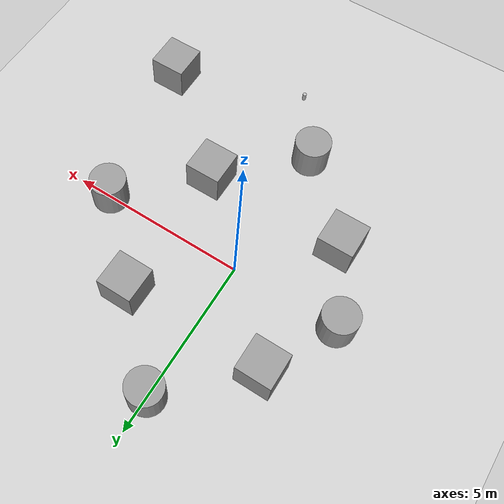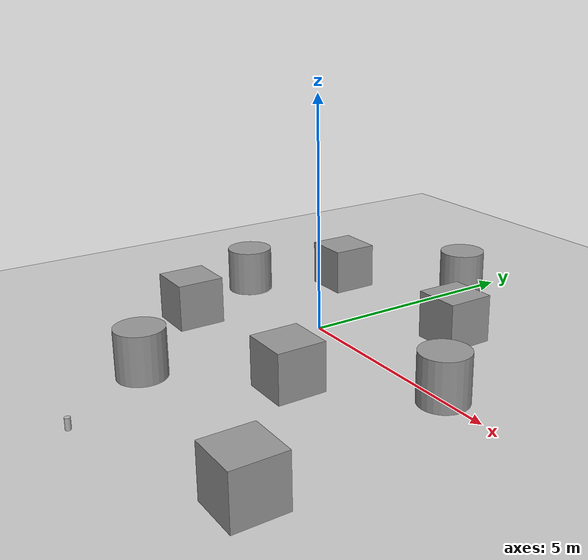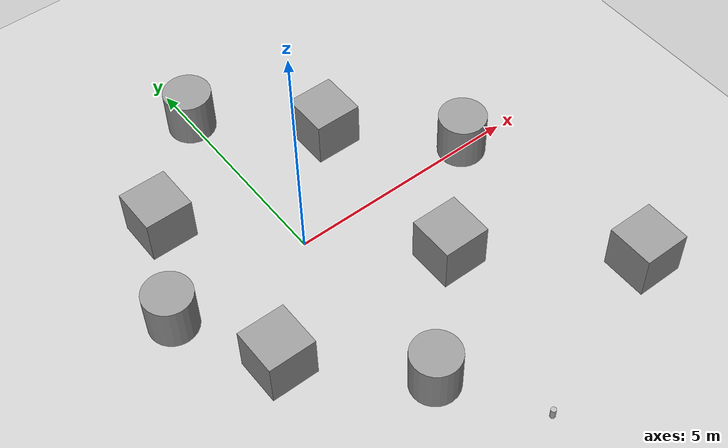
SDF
<sdf version="1.6">
 <world name="default">
  <light name="sun" type="directional">
   <pose>0 0 10 0 -0 0</pose>
   <diffuse>0.8 0.8 0.8 1</diffuse>
   <specular>0.2 0.2 0.2 1</specular>
   <attenuation>
    <range>1000</range>
    <constant>0.9</constant>
    <linear>0.01</linear>
    <quadratic>0.001</quadratic>
   </attenuation>
   <direction>0.5 0.1 -0.9</direction>
  </light>
  <model name="ground_plane">
   <static>1</static>
   <link name="link">
    <collision name="collision">
     <geometry><plane><normal>0 0 1</normal><size>100 100</size></plane></geometry>
     <surface><friction><ode><mu>100</mu><mu2>50</mu2></ode></friction></surface>
    </collision>
    <visual name="visual">
     <cast_shadows>0</cast_shadows>
     <geometry><plane><normal>0 0 1</normal><size>100 100</size></plane></geometry>
     <material>
      <script><uri>file://media/materials/scripts/gazebo.material</uri><name>Gazebo/Grey</name></script>
     </material>
    </visual>
    <velocity_decay><linear>0</linear><angular>0</angular></velocity_decay>
   </link>
  </model>
  <physics name="default_physics" default="0" type="ode">
   <max_step_size>0.01</max_step_size>
   <real_time_factor>1</real_time_factor>
   <real_time_update_rate>100</real_time_update_rate>
  </physics>
  <scene><ambient>0.4 0.4 0.4 1</ambient><background>0.7 0.7 0.7 1</background><shadows>1</shadows></scene>
  <model name="unit_box_1">
   <pose>2 -2 0.5 0 -0 0</pose>
   <link name="link">
    <inertial>
     <mass>1</mass>
     <inertia><ixx>1</ixx><ixy>0</ixy><ixz>0</ixz><iyy>1</iyy><iyz>0</iyz><izz>1</izz></inertia>
    </inertial>
    <collision name="collision"><geometry><box><size>1 1 1</size></box></geometry></collision>
    <visual name="visual">
     <geometry><box><size>1 1 1</size></box></geometry>
     <material>
      <script><uri>file://media/materials/scripts/gazebo.material</uri><name>Gazebo/Grey</name></script>
     </material>
    </visual>
    <velocity_decay><linear>0</linear><angular>0</angular></velocity_decay>
   </link>
   <static>0</static>
  </model>
  <model name="unit_box_2">
   <pose>-2 -2 0.5 0 -0 0</pose>
   <link name="link">
    <inertial>
     <mass>1</mass>
     <inertia><ixx>1</ixx><ixy>0</ixy><ixz>0</ixz><iyy>1</iyy><iyz>0</iyz><izz>1</izz></inertia>
    </inertial>
    <collision name="collision"><geometry><box><size>1 1 1</size></box></geometry></collision>
    <visual name="visual">
     <geometry><box><size>1 1 1</size></box></geometry>
     <material>
      <script><uri>file://media/materials/scripts/gazebo.material</uri><name>Gazebo/Grey</name></script>
     </material>
    </visual>
    <velocity_decay><linear>0</linear><angular>0</angular></velocity_decay>
   </link>
   <static>0</static>
  </model>
  <model name="unit_box_3">
   <pose>-2 2 0.5 0 -0 0</pose>
   <link name="link">
    <inertial>
     <mass>1</mass>
     <inertia><ixx>1</ixx><ixy>0</ixy><ixz>0</ixz><iyy>1</iyy><iyz>0</iyz><izz>1</izz></inertia>
    </inertial>
    <collision name="collision"><geometry><box><size>1 1 1</size></box></geometry></collision>
    <visual name="visual">
     <geometry><box><size>1 1 1</size></box></geometry>
     <material>
      <script><uri>file://media/materials/scripts/gazebo.material</uri><name>Gazebo/Grey</name></script>
     </material>
    </visual>
    <velocity_decay><linear>0</linear><angular>0</angular></velocity_decay>
   </link>
   <static>0</static>
  </model>
  <model name="unit_box_4">
   <pose>2 2 0.5 0 -0 0</pose>
   <link name="link">
    <inertial>
     <mass>1</mass>
     <inertia><ixx>1</ixx><ixy>0</ixy><ixz>0</ixz><iyy>1</iyy><iyz>0</iyz><izz>1</izz></inertia>
    </inertial>
    <collision name="collision"><geometry><box><size>1 1 1</size></box></geometry></collision>
    <visual name="visual">
     <geometry><box><size>1 1 1</size></box></geometry>
     <material>
      <script><uri>file://media/materials/scripts/gazebo.material</uri><name>Gazebo/Grey</name></script>
     </material>
    </visual>
    <velocity_decay><linear>0</linear><angular>0</angular></velocity_decay>
   </link>
   <static>0</static>
  </model>
  <model name="unit_cylinder_1">
   <pose>4 0 0.49912 0 -0 0</pose>
   <link name="link">
    <inertial>
     <mass>1</mass>
     <inertia><ixx>1</ixx><ixy>0</ixy><ixz>0</ixz><iyy>1</iyy><iyz>0</iyz><izz>1</izz></inertia>
    </inertial>
    <collision name="collision">
     <geometry><cylinder><radius>0.5</radius><length>1</length></cylinder></geometry>
    </collision>
    <visual name="visual">
     <geometry><cylinder><radius>0.5</radius><length>1</length></cylinder></geometry>
     <material>
      <script><uri>file://media/materials/scripts/gazebo.material</uri><name>Gazebo/Grey</name></script>
     </material>
    </visual>
    <velocity_decay><linear>0</linear><angular>0</angular></velocity_decay>
   </link>
   <static>0</static>
  </model>
  <model name="unit_cylinder_2">
   <pose>0 4 0.49912 0 -0 0</pose>
   <link name="link">
    <inertial>
     <mass>1</mass>
     <inertia><ixx>1</ixx><ixy>0</ixy><ixz>0</ixz><iyy>1</iyy><iyz>0</iyz><izz>1</izz></inertia>
    </inertial>
    <collision name="collision">
     <geometry><cylinder><radius>0.5</radius><length>1</length></cylinder></geometry>
    </collision>
    <visual name="visual">
     <geometry><cylinder><radius>0.5</radius><length>1</length></cylinder></geometry>
     <material>
      <script><uri>file://media/materials/scripts/gazebo.material</uri><name>Gazebo/Grey</name></script>
     </material>
    </visual>
    <velocity_decay><linear>0</linear><angular>0</angular></velocity_decay>
   </link>
   <static>0</static>
  </model>
  <model name="unit_cylinder_3">
   <pose>-3 0 0.49912 0 -0 0</pose>
   <link name="link">
    <inertial>
     <mass>1</mass>
     <inertia><ixx>1</ixx><ixy>0</ixy><ixz>0</ixz><iyy>1</iyy><iyz>0</iyz><izz>1</izz></inertia>
    </inertial>
    <collision name="collision">
     <geometry><cylinder><radius>0.5</radius><length>1</length></cylinder></geometry>
    </collision>
    <visual name="visual">
     <geometry><cylinder><radius>0.5</radius><length>1</length></cylinder></geometry>
     <material>
      <script><uri>file://media/materials/scripts/gazebo.material</uri><name>Gazebo/Grey</name></script>
     </material>
    </visual>
    <velocity_decay><linear>0</linear><angular>0</angular></velocity_decay>
   </link>
   <static>0</static>
  </model>
  <model name="unit_cylinder_4">
   <pose>0 -4 0.49912 0 -0 0</pose>
   <link name="link">
    <inertial>
     <mass>1</mass>
     <inertia><ixx>1</ixx><ixy>0</ixy><ixz>0</ixz><iyy>1</iyy><iyz>0</iyz><izz>1</izz></inertia>
    </inertial>
    <collision name="collision">
     <geometry><cylinder><radius>0.5</radius><length>1</length></cylinder></geometry>
    </collision>
    <visual name="visual">
     <geometry><cylinder><radius>0.5</radius><length>1</length></cylinder></geometry>
     <material>
      <script><uri>file://media/materials/scripts/gazebo.material</uri><name>Gazebo/Grey</name></script>
     </material>
    </visual>
    <velocity_decay><linear>0</linear><angular>0</angular></velocity_decay>
   </link>
   <static>0</static>
  </model>
  <gravity>0 0 -9.8</gravity>
  <magnetic_field>6e-06 2.3e-05 -4.2e-05</magnetic_field>
  <atmosphere type="adiabatic"/>
  <spherical_coordinates>
   <surface_model>EARTH_WGS84</surface_model>
   <latitude_deg>0</latitude_deg>
   <longitude_deg>0</longitude_deg>
   <elevation>0</elevation>
   <heading_deg>0</heading_deg>
  </spherical_coordinates>
  <model name="unit_box_0">
   <pose>4.79321 -4.43849 0.49907 -0.0001 0 0</pose>
   <link name="link">
    <inertial>
     <mass>1</mass>
     <inertia>
      <ixx>0.166667</ixx>
      <ixy>0</ixy>
      <ixz>0</ixz>
      <iyy>0.166667</iyy>
      <iyz>0</iyz>
      <izz>0.166667</izz>
     </inertia>
    </inertial>
    <collision name="collision"><geometry><box><size>1 1 1</size></box></geometry></collision>
    <visual name="visual">
     <geometry><box><size>1 1 1</size></box></geometry>
     <material>
      <script><name>Gazebo/Grey</name><uri>file://media/materials/scripts/gazebo.material</uri></script>
     </material>
    </visual>
   </link>
  </model>
  <model name="beer">
   <link name="link">
    <pose>0 0 0.115 0 -0 0</pose>
    <inertial>
     <mass>0.39</mass>
     <inertia><ixx>0.00058</ixx><ixy>0</ixy><ixz>0</ixz><iyy>0.00058</iyy><iyz>0</iyz><izz>0.00019</izz></inertia>
    </inertial>
    <collision name="collision">
     <geometry><cylinder><radius>0.055</radius><length>0.23</length></cylinder></geometry>
    </collision>
    <visual name="visual">
     <geometry><cylinder><radius>0.055</radius><length>0.23</length></cylinder></geometry>
     <material>
      <script>
       <uri>model://beer/materials/scripts</uri>
       <uri>model://beer/materials/textures</uri>
       <name>Beer/Diffuse</name>
      </script>
     </material>
    </visual>
   </link>
   <pose>1.19663 -5.81789 -0.00088 5e-05 -1e-05 -0.000186</pose>
  </model>
 </world>
</sdf>
